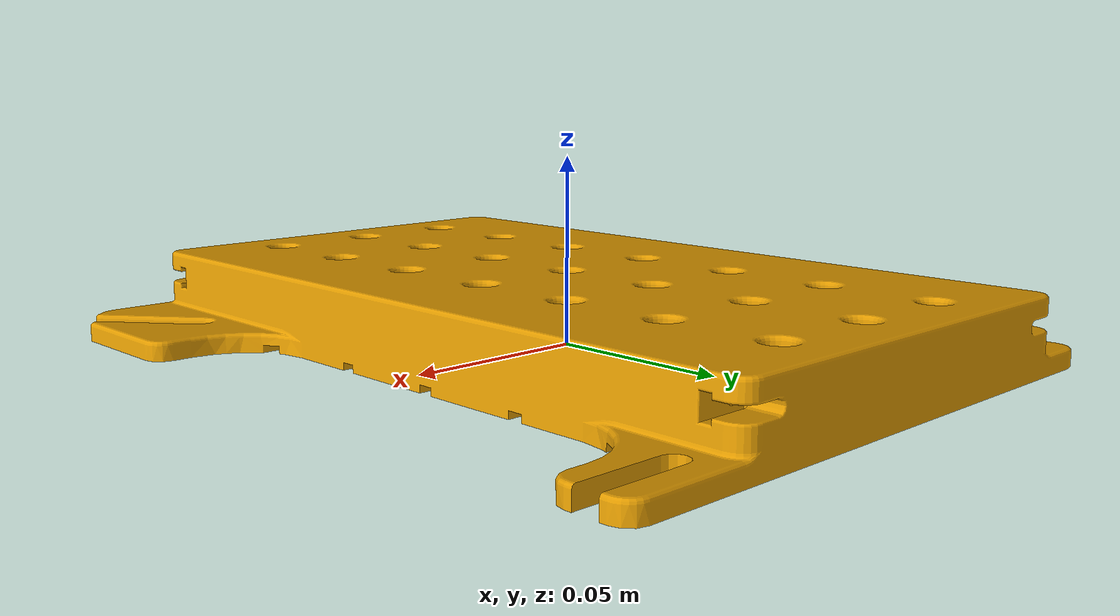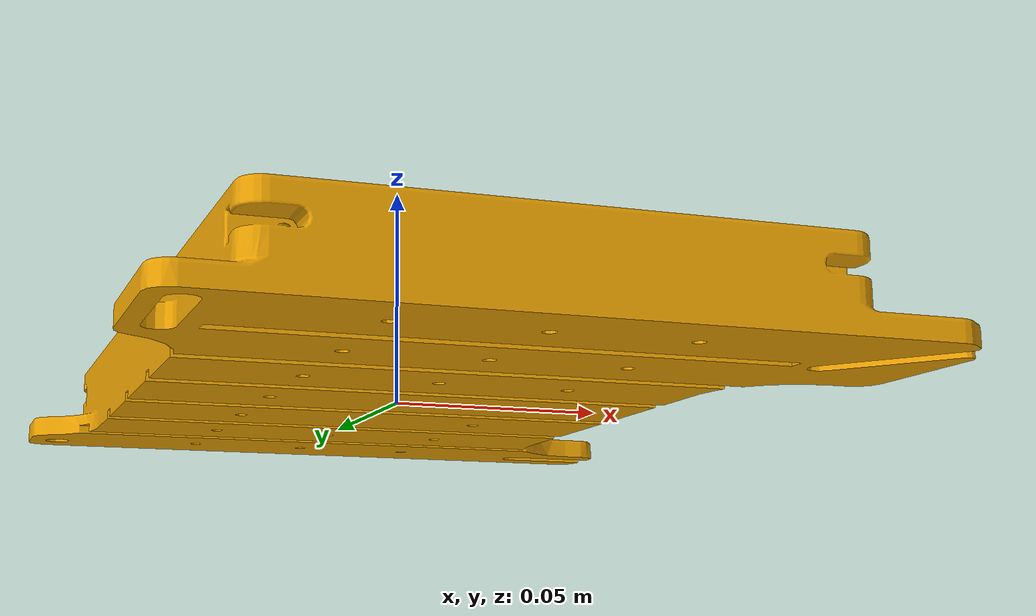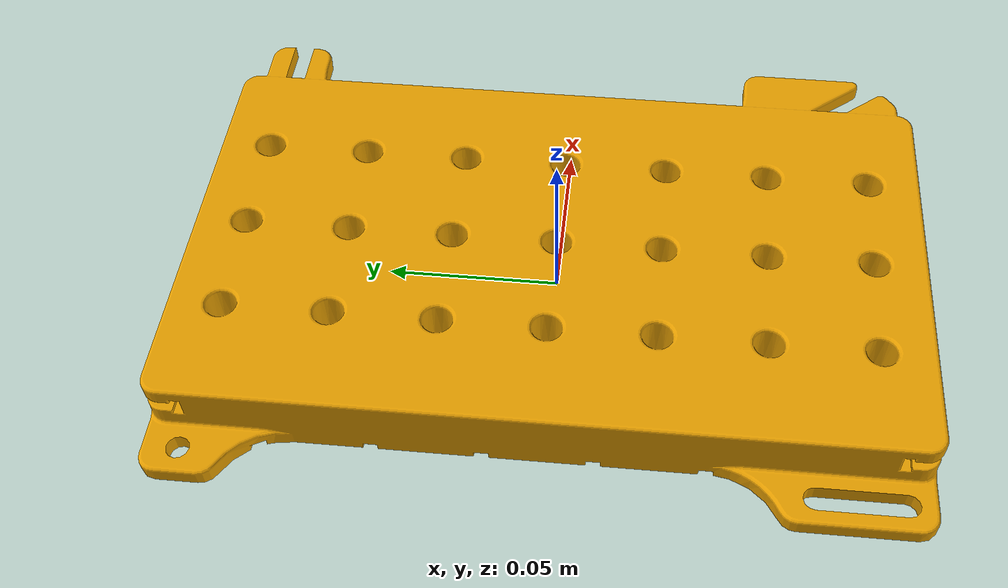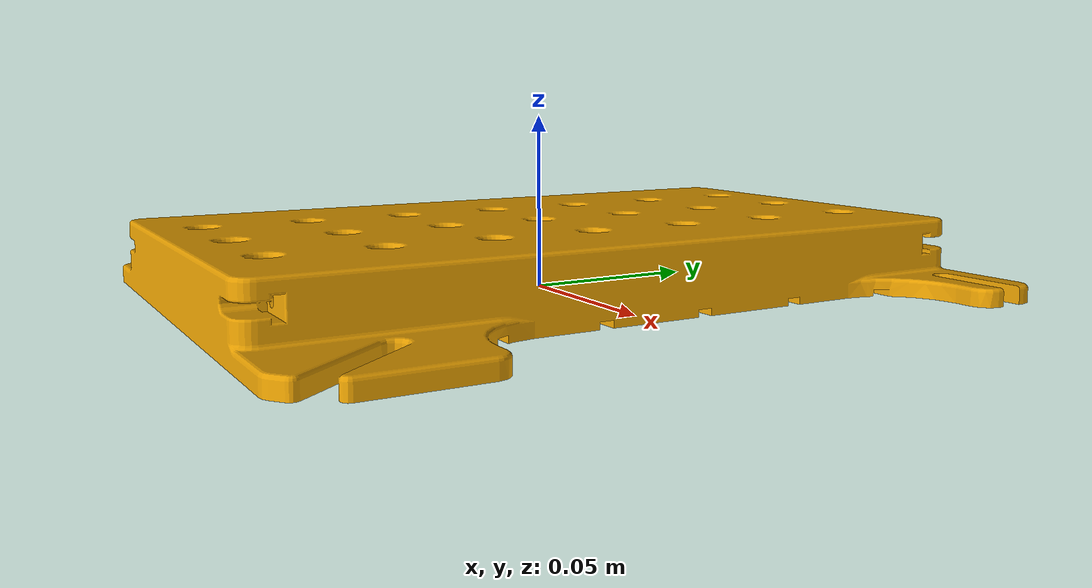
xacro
<?xml version="1.0" encoding="utf-8"?>
<robot
  name="wood_pin_holder">
  <link
    name="wood_pin_holder">
    <inertial>
      <origin
        xyz="0.00082169 -0.000610569999999999 0.0098054"
        rpy="0 0 0" />
      <mass
        value="0.48933" />
      <inertia
        ixx="0.0018492"
        ixy="1.6476E-05"
        ixz="2.9395E-06"
        iyy="0.00066063"
        iyz="2.18750000000011E-06"
        izz="0.0024768" />
    </inertial>
    <visual>
      <origin
        xyz="0 0 0"
        rpy="1.5707963267949 0 0" />
      <geometry>
        <mesh
          filename="package://cai_env/meshes/wood_pin_holder.STL" />
      </geometry>
    </visual>
    <collision>
      <origin
        xyz="0 0 0"
        rpy="1.5707963267949 0 0" />
      <geometry>
        <mesh
          filename="package://cai_env/meshes/wood_pin_holder.STL" />
      </geometry>
    </collision>
  </link>
</robot>
